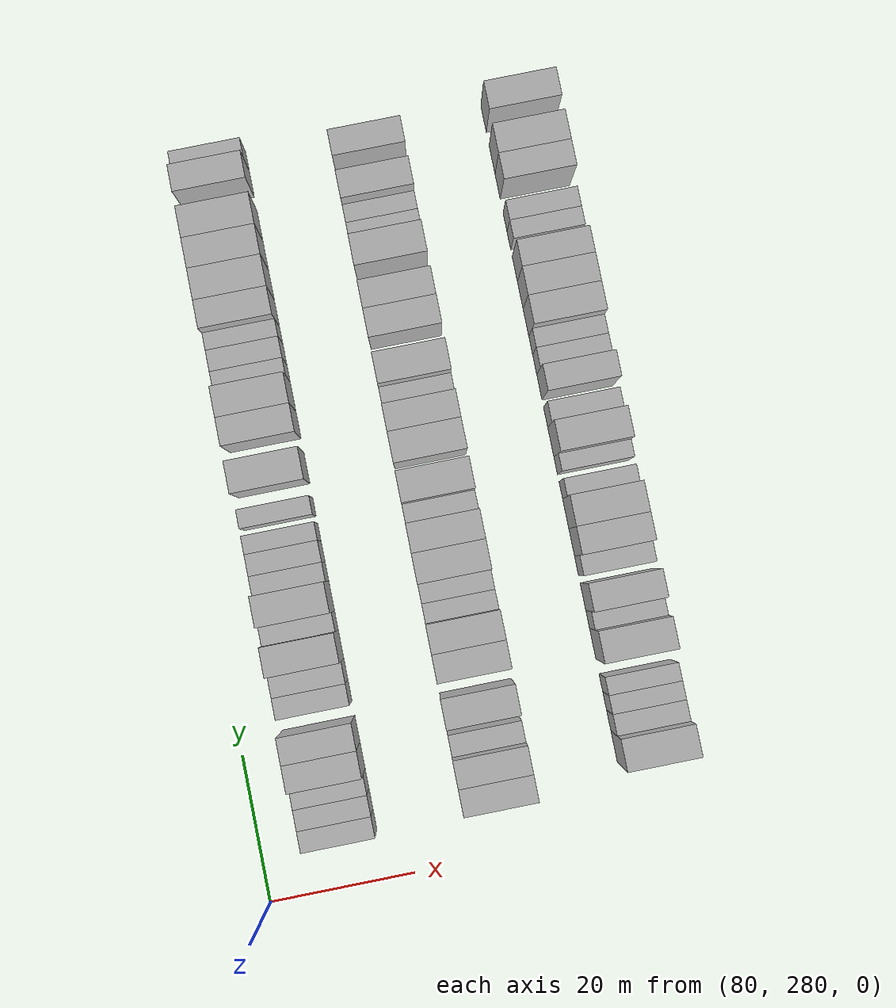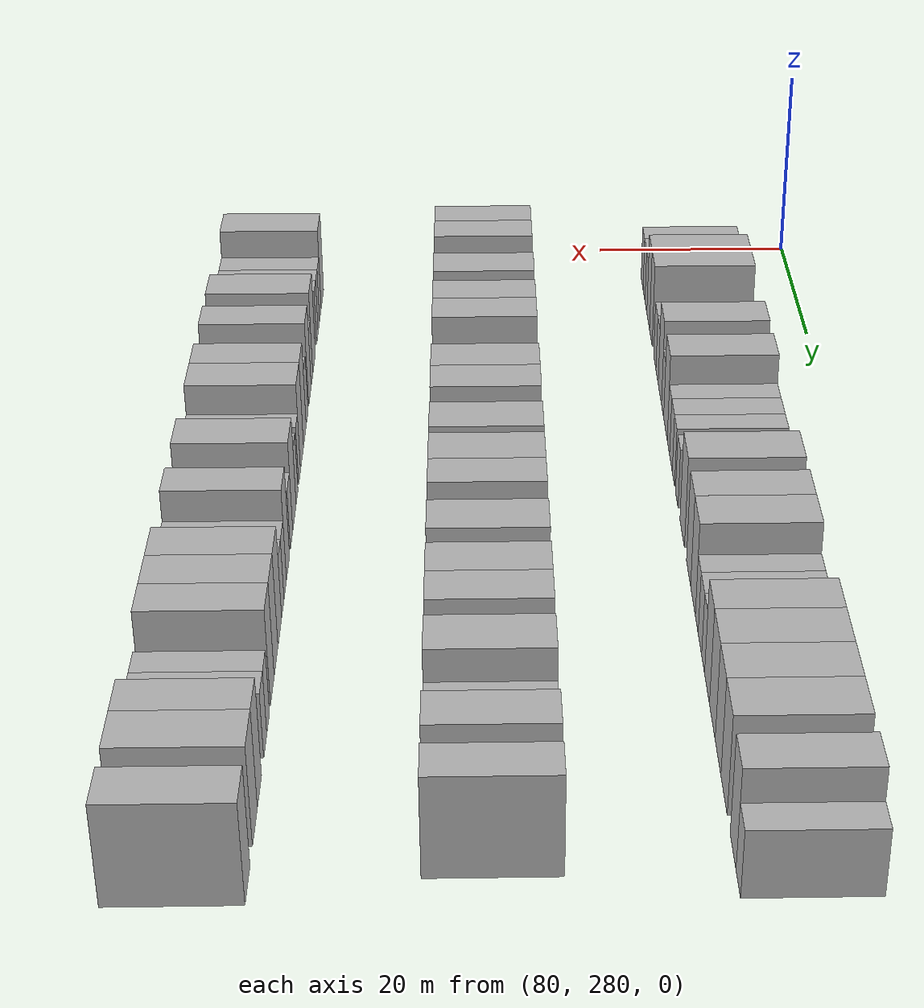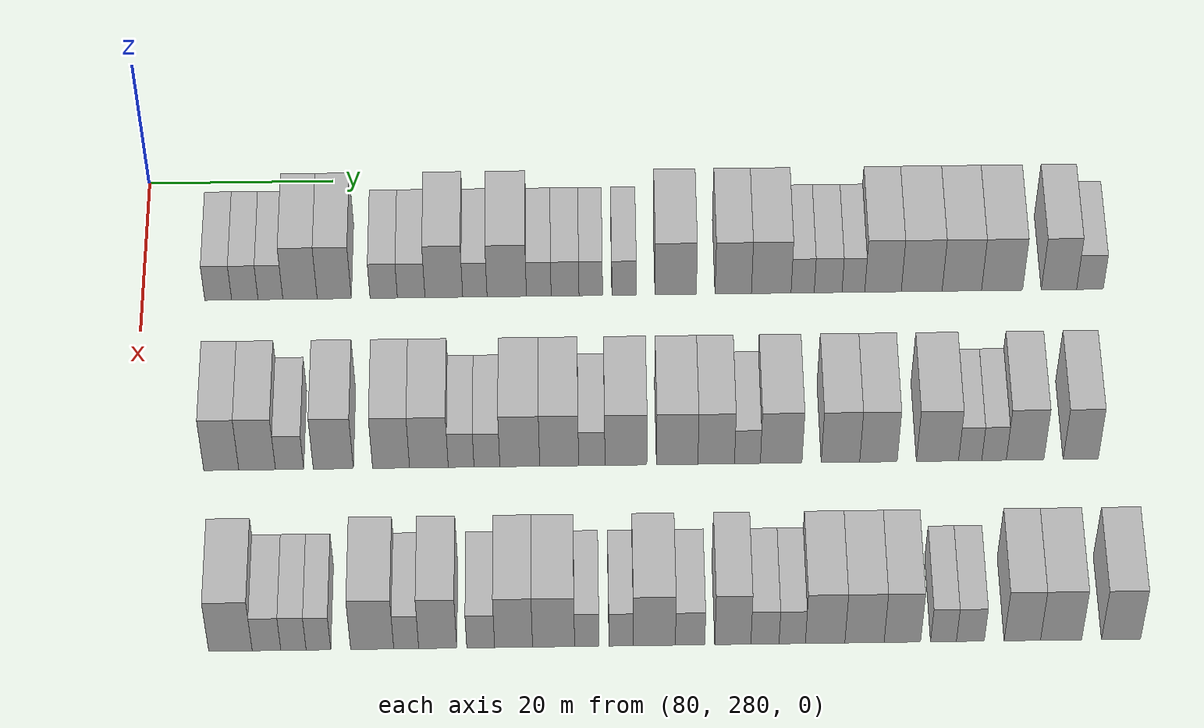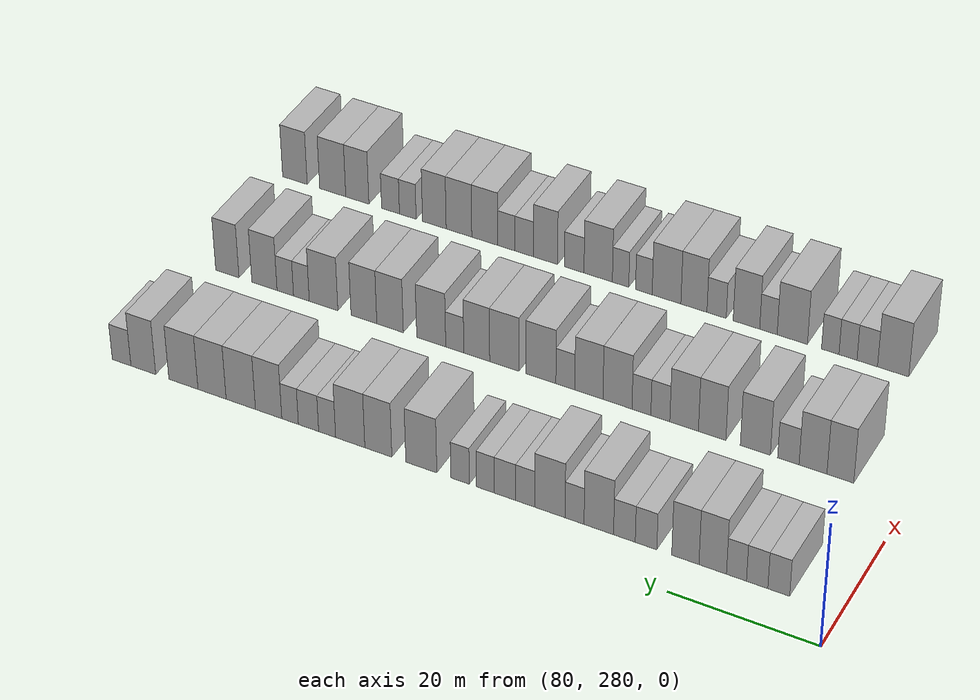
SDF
<sdf version="1.6">
 <world name="default">
  <model name="building_722">
   <static>1</static>
   <pose>91.0000 288.1265 0 0.000000 0.000000 0.000000</pose>
   <link name="link">
    <pose>0 0 3.00 0 0 0</pose>
    <collision name="collision"><geometry><box><size>10.0000 2.8648 6.0000</size></box></geometry></collision>
    <visual name="visual">
     <cast_shadows>0</cast_shadows>
     <geometry><box><size>10.0000 2.8648 6.0000</size></box></geometry>
     <material>
      <script>
       <uri>model://HANNAS_wall/materials/scripts</uri>
       <uri>model://HANNAS_wall/materials/textures</uri>
       <name>vrc/HANNAS_wall</name>
      </script>
     </material>
    </visual>
   </link>
  </model>
  <model name="building_723">
   <static>1</static>
   <pose>91.0000 290.9679 0 0.000000 0.000000 0.000000</pose>
   <link name="link">
    <pose>0 0 3.00 0 0 0</pose>
    <collision name="collision"><geometry><box><size>10.0000 2.8181 6.0000</size></box></geometry></collision>
    <visual name="visual">
     <cast_shadows>0</cast_shadows>
     <geometry><box><size>10.0000 2.8181 6.0000</size></box></geometry>
     <material>
      <script>
       <uri>model://HANNAS_wall/materials/scripts</uri>
       <uri>model://HANNAS_wall/materials/textures</uri>
       <name>vrc/HANNAS_wall</name>
      </script>
     </material>
    </visual>
   </link>
  </model>
  <model name="building_724">
   <static>1</static>
   <pose>91.0000 293.7008 0 0.000000 0.000000 0.000000</pose>
   <link name="link">
    <pose>0 0 3.00 0 0 0</pose>
    <collision name="collision"><geometry><box><size>10.0000 2.6477 6.0000</size></box></geometry></collision>
    <visual name="visual">
     <cast_shadows>0</cast_shadows>
     <geometry><box><size>10.0000 2.6477 6.0000</size></box></geometry>
     <material>
      <script>
       <uri>model://HANNAS_wall/materials/scripts</uri>
       <uri>model://HANNAS_wall/materials/textures</uri>
       <name>vrc/HANNAS_wall</name>
      </script>
     </material>
    </visual>
   </link>
  </model>
  <model name="building_725">
   <static>1</static>
   <pose>91.0000 296.8604 0 0.000000 0.000000 0.000000</pose>
   <link name="link">
    <pose>0 0 4.50 0 0 0</pose>
    <collision name="collision"><geometry><box><size>10.0000 3.6715 9.0000</size></box></geometry></collision>
    <visual name="visual">
     <cast_shadows>0</cast_shadows>
     <geometry><box><size>10.0000 3.6715 9.0000</size></box></geometry>
     <material>
      <script>
       <uri>model://HANNAS_wall/materials/scripts</uri>
       <uri>model://HANNAS_wall/materials/textures</uri>
       <name>vrc/HANNAS_wall</name>
      </script>
     </material>
    </visual>
   </link>
  </model>
  <model name="building_726">
   <static>1</static>
   <pose>91.0000 300.5198 0 0.000000 0.000000 0.000000</pose>
   <link name="link">
    <pose>0 0 4.50 0 0 0</pose>
    <collision name="collision"><geometry><box><size>10.0000 3.6472 9.0000</size></box></geometry></collision>
    <visual name="visual">
     <cast_shadows>0</cast_shadows>
     <geometry><box><size>10.0000 3.6472 9.0000</size></box></geometry>
     <material>
      <script>
       <uri>model://HANNAS_wall/materials/scripts</uri>
       <uri>model://HANNAS_wall/materials/textures</uri>
       <name>vrc/HANNAS_wall</name>
      </script>
     </material>
    </visual>
   </link>
  </model>
  <model name="building_727">
   <static>1</static>
   <pose>91.0000 305.8039 0 0.000000 0.000000 0.000000</pose>
   <link name="link">
    <pose>0 0 3.00 0 0 0</pose>
    <collision name="collision"><geometry><box><size>10.0000 2.9212 6.0000</size></box></geometry></collision>
    <visual name="visual">
     <cast_shadows>0</cast_shadows>
     <geometry><box><size>10.0000 2.9212 6.0000</size></box></geometry>
     <material>
      <script>
       <uri>model://HANNAS_wall/materials/scripts</uri>
       <uri>model://HANNAS_wall/materials/textures</uri>
       <name>vrc/HANNAS_wall</name>
      </script>
     </material>
    </visual>
   </link>
  </model>
  <model name="building_728">
   <static>1</static>
   <pose>91.0000 308.7383 0 0.000000 0.000000 0.000000</pose>
   <link name="link">
    <pose>0 0 3.00 0 0 0</pose>
    <collision name="collision"><geometry><box><size>10.0000 2.9477 6.0000</size></box></geometry></collision>
    <visual name="visual">
     <cast_shadows>0</cast_shadows>
     <geometry><box><size>10.0000 2.9477 6.0000</size></box></geometry>
     <material>
      <script>
       <uri>model://HANNAS_wall/materials/scripts</uri>
       <uri>model://HANNAS_wall/materials/textures</uri>
       <name>vrc/HANNAS_wall</name>
      </script>
     </material>
    </visual>
   </link>
  </model>
  <model name="building_729">
   <static>1</static>
   <pose>91.0000 312.2304 0 0.000000 0.000000 0.000000</pose>
   <link name="link">
    <pose>0 0 4.50 0 0 0</pose>
    <collision name="collision"><geometry><box><size>10.0000 4.0364 9.0000</size></box></geometry></collision>
    <visual name="visual">
     <cast_shadows>0</cast_shadows>
     <geometry><box><size>10.0000 4.0364 9.0000</size></box></geometry>
     <material>
      <script>
       <uri>model://HANNAS_wall/materials/scripts</uri>
       <uri>model://HANNAS_wall/materials/textures</uri>
       <name>vrc/HANNAS_wall</name>
      </script>
     </material>
    </visual>
   </link>
  </model>
  <model name="building_730">
   <static>1</static>
   <pose>91.0000 315.5493 0 0.000000 0.000000 0.000000</pose>
   <link name="link">
    <pose>0 0 3.00 0 0 0</pose>
    <collision name="collision"><geometry><box><size>10.0000 2.6014 6.0000</size></box></geometry></collision>
    <visual name="visual">
     <cast_shadows>0</cast_shadows>
     <geometry><box><size>10.0000 2.6014 6.0000</size></box></geometry>
     <material>
      <script>
       <uri>model://HANNAS_wall/materials/scripts</uri>
       <uri>model://HANNAS_wall/materials/textures</uri>
       <name>vrc/HANNAS_wall</name>
      </script>
     </material>
    </visual>
   </link>
  </model>
  <model name="building_731">
   <static>1</static>
   <pose>91.0000 318.9566 0 0.000000 0.000000 0.000000</pose>
   <link name="link">
    <pose>0 0 4.50 0 0 0</pose>
    <collision name="collision"><geometry><box><size>10.0000 4.2130 9.0000</size></box></geometry></collision>
    <visual name="visual">
     <cast_shadows>0</cast_shadows>
     <geometry><box><size>10.0000 4.2130 9.0000</size></box></geometry>
     <material>
      <script>
       <uri>model://HANNAS_wall/materials/scripts</uri>
       <uri>model://HANNAS_wall/materials/textures</uri>
       <name>vrc/HANNAS_wall</name>
      </script>
     </material>
    </visual>
   </link>
  </model>
  <model name="building_732">
   <static>1</static>
   <pose>91.0000 322.3830 0 0.000000 0.000000 0.000000</pose>
   <link name="link">
    <pose>0 0 3.00 0 0 0</pose>
    <collision name="collision"><geometry><box><size>10.0000 2.6398 6.0000</size></box></geometry></collision>
    <visual name="visual">
     <cast_shadows>0</cast_shadows>
     <geometry><box><size>10.0000 2.6398 6.0000</size></box></geometry>
     <material>
      <script>
       <uri>model://HANNAS_wall/materials/scripts</uri>
       <uri>model://HANNAS_wall/materials/textures</uri>
       <name>vrc/HANNAS_wall</name>
      </script>
     </material>
    </visual>
   </link>
  </model>
  <model name="building_733">
   <static>1</static>
   <pose>91.0000 325.1922 0 0.000000 0.000000 0.000000</pose>
   <link name="link">
    <pose>0 0 3.00 0 0 0</pose>
    <collision name="collision"><geometry><box><size>10.0000 2.9786 6.0000</size></box></geometry></collision>
    <visual name="visual">
     <cast_shadows>0</cast_shadows>
     <geometry><box><size>10.0000 2.9786 6.0000</size></box></geometry>
     <material>
      <script>
       <uri>model://HANNAS_wall/materials/scripts</uri>
       <uri>model://HANNAS_wall/materials/textures</uri>
       <name>vrc/HANNAS_wall</name>
      </script>
     </material>
    </visual>
   </link>
  </model>
  <model name="building_734">
   <static>1</static>
   <pose>91.0000 327.9392 0 0.000000 0.000000 0.000000</pose>
   <link name="link">
    <pose>0 0 3.00 0 0 0</pose>
    <collision name="collision"><geometry><box><size>10.0000 2.5154 6.0000</size></box></geometry></collision>
    <visual name="visual">
     <cast_shadows>0</cast_shadows>
     <geometry><box><size>10.0000 2.5154 6.0000</size></box></geometry>
     <material>
      <script>
       <uri>model://HANNAS_wall/materials/scripts</uri>
       <uri>model://HANNAS_wall/materials/textures</uri>
       <name>vrc/HANNAS_wall</name>
      </script>
     </material>
    </visual>
   </link>
  </model>
  <model name="building_735">
   <static>1</static>
   <pose>91.0000 331.5018 0 0.000000 0.000000 0.000000</pose>
   <link name="link">
    <pose>0 0 3.00 0 0 0</pose>
    <collision name="collision"><geometry><box><size>10.0000 2.6098 6.0000</size></box></geometry></collision>
    <visual name="visual">
     <cast_shadows>0</cast_shadows>
     <geometry><box><size>10.0000 2.6098 6.0000</size></box></geometry>
     <material>
      <script>
       <uri>model://HANNAS_wall/materials/scripts</uri>
       <uri>model://HANNAS_wall/materials/textures</uri>
       <name>vrc/HANNAS_wall</name>
      </script>
     </material>
    </visual>
   </link>
  </model>
  <model name="building_736">
   <static>1</static>
   <pose>91.0000 337.0210 0 0.000000 0.000000 0.000000</pose>
   <link name="link">
    <pose>0 0 4.50 0 0 0</pose>
    <collision name="collision"><geometry><box><size>10.0000 4.4286 9.0000</size></box></geometry></collision>
    <visual name="visual">
     <cast_shadows>0</cast_shadows>
     <geometry><box><size>10.0000 4.4286 9.0000</size></box></geometry>
     <material>
      <script>
       <uri>model://HANNAS_wall/materials/scripts</uri>
       <uri>model://HANNAS_wall/materials/textures</uri>
       <name>vrc/HANNAS_wall</name>
      </script>
     </material>
    </visual>
   </link>
  </model>
  <model name="building_737">
   <static>1</static>
   <pose>91.0000 343.1822 0 0.000000 0.000000 0.000000</pose>
   <link name="link">
    <pose>0 0 4.50 0 0 0</pose>
    <collision name="collision"><geometry><box><size>10.0000 3.8938 9.0000</size></box></geometry></collision>
    <visual name="visual">
     <cast_shadows>0</cast_shadows>
     <geometry><box><size>10.0000 3.8938 9.0000</size></box></geometry>
     <material>
      <script>
       <uri>model://HANNAS_wall/materials/scripts</uri>
       <uri>model://HANNAS_wall/materials/textures</uri>
       <name>vrc/HANNAS_wall</name>
      </script>
     </material>
    </visual>
   </link>
  </model>
  <model name="building_738">
   <static>1</static>
   <pose>91.0000 347.2525 0 0.000000 0.000000 0.000000</pose>
   <link name="link">
    <pose>0 0 4.50 0 0 0</pose>
    <collision name="collision"><geometry><box><size>10.0000 4.2467 9.0000</size></box></geometry></collision>
    <visual name="visual">
     <cast_shadows>0</cast_shadows>
     <geometry><box><size>10.0000 4.2467 9.0000</size></box></geometry>
     <material>
      <script>
       <uri>model://HANNAS_wall/materials/scripts</uri>
       <uri>model://HANNAS_wall/materials/textures</uri>
       <name>vrc/HANNAS_wall</name>
      </script>
     </material>
    </visual>
   </link>
  </model>
  <model name="building_739">
   <static>1</static>
   <pose>91.0000 350.6167 0 0.000000 0.000000 0.000000</pose>
   <link name="link">
    <pose>0 0 3.00 0 0 0</pose>
    <collision name="collision"><geometry><box><size>10.0000 2.4818 6.0000</size></box></geometry></collision>
    <visual name="visual">
     <cast_shadows>0</cast_shadows>
     <geometry><box><size>10.0000 2.4818 6.0000</size></box></geometry>
     <material>
      <script>
       <uri>model://HANNAS_wall/materials/scripts</uri>
       <uri>model://HANNAS_wall/materials/textures</uri>
       <name>vrc/HANNAS_wall</name>
      </script>
     </material>
    </visual>
   </link>
  </model>
  <model name="building_740">
   <static>1</static>
   <pose>91.0000 353.3417 0 0.000000 0.000000 0.000000</pose>
   <link name="link">
    <pose>0 0 3.00 0 0 0</pose>
    <collision name="collision"><geometry><box><size>10.0000 2.9683 6.0000</size></box></geometry></collision>
    <visual name="visual">
     <cast_shadows>0</cast_shadows>
     <geometry><box><size>10.0000 2.9683 6.0000</size></box></geometry>
     <material>
      <script>
       <uri>model://HANNAS_wall/materials/scripts</uri>
       <uri>model://HANNAS_wall/materials/textures</uri>
       <name>vrc/HANNAS_wall</name>
      </script>
     </material>
    </visual>
   </link>
  </model>
  <model name="building_741">
   <static>1</static>
   <pose>91.0000 356.0462 0 0.000000 0.000000 0.000000</pose>
   <link name="link">
    <pose>0 0 3.00 0 0 0</pose>
    <collision name="collision"><geometry><box><size>10.0000 2.4407 6.0000</size></box></geometry></collision>
    <visual name="visual">
     <cast_shadows>0</cast_shadows>
     <geometry><box><size>10.0000 2.4407 6.0000</size></box></geometry>
     <material>
      <script>
       <uri>model://HANNAS_wall/materials/scripts</uri>
       <uri>model://HANNAS_wall/materials/textures</uri>
       <name>vrc/HANNAS_wall</name>
      </script>
     </material>
    </visual>
   </link>
  </model>
  <model name="building_742">
   <static>1</static>
   <pose>91.0000 359.2211 0 0.000000 0.000000 0.000000</pose>
   <link name="link">
    <pose>0 0 4.50 0 0 0</pose>
    <collision name="collision"><geometry><box><size>10.0000 3.9092 9.0000</size></box></geometry></collision>
    <visual name="visual">
     <cast_shadows>0</cast_shadows>
     <geometry><box><size>10.0000 3.9092 9.0000</size></box></geometry>
     <material>
      <script>
       <uri>model://HANNAS_wall/materials/scripts</uri>
       <uri>model://HANNAS_wall/materials/textures</uri>
       <name>vrc/HANNAS_wall</name>
      </script>
     </material>
    </visual>
   </link>
  </model>
  <model name="building_743">
   <static>1</static>
   <pose>91.0000 363.3642 0 0.000000 0.000000 0.000000</pose>
   <link name="link">
    <pose>0 0 4.50 0 0 0</pose>
    <collision name="collision"><geometry><box><size>10.0000 4.3770 9.0000</size></box></geometry></collision>
    <visual name="visual">
     <cast_shadows>0</cast_shadows>
     <geometry><box><size>10.0000 4.3770 9.0000</size></box></geometry>
     <material>
      <script>
       <uri>model://HANNAS_wall/materials/scripts</uri>
       <uri>model://HANNAS_wall/materials/textures</uri>
       <name>vrc/HANNAS_wall</name>
      </script>
     </material>
    </visual>
   </link>
  </model>
  <model name="building_744">
   <static>1</static>
   <pose>91.0000 367.6652 0 0.000000 0.000000 0.000000</pose>
   <link name="link">
    <pose>0 0 4.50 0 0 0</pose>
    <collision name="collision"><geometry><box><size>10.0000 4.2252 9.0000</size></box></geometry></collision>
    <visual name="visual">
     <cast_shadows>0</cast_shadows>
     <geometry><box><size>10.0000 4.2252 9.0000</size></box></geometry>
     <material>
      <script>
       <uri>model://HANNAS_wall/materials/scripts</uri>
       <uri>model://HANNAS_wall/materials/textures</uri>
       <name>vrc/HANNAS_wall</name>
      </script>
     </material>
    </visual>
   </link>
  </model>
  <model name="building_745">
   <static>1</static>
   <pose>91.0000 371.9808 0 0.000000 0.000000 0.000000</pose>
   <link name="link">
    <pose>0 0 4.50 0 0 0</pose>
    <collision name="collision"><geometry><box><size>10.0000 4.4059 9.0000</size></box></geometry></collision>
    <visual name="visual">
     <cast_shadows>0</cast_shadows>
     <geometry><box><size>10.0000 4.4059 9.0000</size></box></geometry>
     <material>
      <script>
       <uri>model://HANNAS_wall/materials/scripts</uri>
       <uri>model://HANNAS_wall/materials/textures</uri>
       <name>vrc/HANNAS_wall</name>
      </script>
     </material>
    </visual>
   </link>
  </model>
  <model name="building_746">
   <static>1</static>
   <pose>91.0000 378.0771 0 0.000000 0.000000 0.000000</pose>
   <link name="link">
    <pose>0 0 4.50 0 0 0</pose>
    <collision name="collision"><geometry><box><size>10.0000 3.7868 9.0000</size></box></geometry></collision>
    <visual name="visual">
     <cast_shadows>0</cast_shadows>
     <geometry><box><size>10.0000 3.7868 9.0000</size></box></geometry>
     <material>
      <script>
       <uri>model://HANNAS_wall/materials/scripts</uri>
       <uri>model://HANNAS_wall/materials/textures</uri>
       <name>vrc/HANNAS_wall</name>
      </script>
     </material>
    </visual>
   </link>
  </model>
  <model name="building_747">
   <static>1</static>
   <pose>91.0000 381.3999 0 0.000000 0.000000 0.000000</pose>
   <link name="link">
    <pose>0 0 3.00 0 0 0</pose>
    <collision name="collision"><geometry><box><size>10.0000 2.8589 6.0000</size></box></geometry></collision>
    <visual name="visual">
     <cast_shadows>0</cast_shadows>
     <geometry><box><size>10.0000 2.8589 6.0000</size></box></geometry>
     <material>
      <script>
       <uri>model://HANNAS_wall/materials/scripts</uri>
       <uri>model://HANNAS_wall/materials/textures</uri>
       <name>vrc/HANNAS_wall</name>
      </script>
     </material>
    </visual>
   </link>
  </model>
  <model name="building_920">
   <static>1</static>
   <pose>113.0000 289.3886 0 0.000000 0.000000 0.000000</pose>
   <link name="link">
    <pose>0 0 4.50 0 0 0</pose>
    <collision name="collision"><geometry><box><size>10.0000 3.6331 9.0000</size></box></geometry></collision>
    <visual name="visual">
     <cast_shadows>0</cast_shadows>
     <geometry><box><size>10.0000 3.6331 9.0000</size></box></geometry>
     <material>
      <script>
       <uri>model://HANNAS_wall/materials/scripts</uri>
       <uri>model://HANNAS_wall/materials/textures</uri>
       <name>vrc/HANNAS_wall</name>
      </script>
     </material>
    </visual>
   </link>
  </model>
  <model name="building_921">
   <static>1</static>
   <pose>113.0000 293.1034 0 0.000000 0.000000 0.000000</pose>
   <link name="link">
    <pose>0 0 4.50 0 0 0</pose>
    <collision name="collision"><geometry><box><size>10.0000 3.7965 9.0000</size></box></geometry></collision>
    <visual name="visual">
     <cast_shadows>0</cast_shadows>
     <geometry><box><size>10.0000 3.7965 9.0000</size></box></geometry>
     <material>
      <script>
       <uri>model://HANNAS_wall/materials/scripts</uri>
       <uri>model://HANNAS_wall/materials/textures</uri>
       <name>vrc/HANNAS_wall</name>
      </script>
     </material>
    </visual>
   </link>
  </model>
  <model name="building_922">
   <static>1</static>
   <pose>113.0000 296.4651 0 0.000000 0.000000 0.000000</pose>
   <link name="link">
    <pose>0 0 3.00 0 0 0</pose>
    <collision name="collision"><geometry><box><size>10.0000 2.9270 6.0000</size></box></geometry></collision>
    <visual name="visual">
     <cast_shadows>0</cast_shadows>
     <geometry><box><size>10.0000 2.9270 6.0000</size></box></geometry>
     <material>
      <script>
       <uri>model://HANNAS_wall/materials/scripts</uri>
       <uri>model://HANNAS_wall/materials/textures</uri>
       <name>vrc/HANNAS_wall</name>
      </script>
     </material>
    </visual>
   </link>
  </model>
  <model name="building_923">
   <static>1</static>
   <pose>113.0000 301.0033 0 0.000000 0.000000 0.000000</pose>
   <link name="link">
    <pose>0 0 4.50 0 0 0</pose>
    <collision name="collision"><geometry><box><size>10.0000 4.1494 9.0000</size></box></geometry></collision>
    <visual name="visual">
     <cast_shadows>0</cast_shadows>
     <geometry><box><size>10.0000 4.1494 9.0000</size></box></geometry>
     <material>
      <script>
       <uri>model://HANNAS_wall/materials/scripts</uri>
       <uri>model://HANNAS_wall/materials/textures</uri>
       <name>vrc/HANNAS_wall</name>
      </script>
     </material>
    </visual>
   </link>
  </model>
  <model name="building_924">
   <static>1</static>
   <pose>113.0000 306.9953 0 0.000000 0.000000 0.000000</pose>
   <link name="link">
    <pose>0 0 4.50 0 0 0</pose>
    <collision name="collision"><geometry><box><size>10.0000 3.8348 9.0000</size></box></geometry></collision>
    <visual name="visual">
     <cast_shadows>0</cast_shadows>
     <geometry><box><size>10.0000 3.8348 9.0000</size></box></geometry>
     <material>
      <script>
       <uri>model://HANNAS_wall/materials/scripts</uri>
       <uri>model://HANNAS_wall/materials/textures</uri>
       <name>vrc/HANNAS_wall</name>
      </script>
     </material>
    </visual>
   </link>
  </model>
  <model name="building_925">
   <static>1</static>
   <pose>113.0000 310.9162 0 0.000000 0.000000 0.000000</pose>
   <link name="link">
    <pose>0 0 4.50 0 0 0</pose>
    <collision name="collision"><geometry><box><size>10.0000 4.0070 9.0000</size></box></geometry></collision>
    <visual name="visual">
     <cast_shadows>0</cast_shadows>
     <geometry><box><size>10.0000 4.0070 9.0000</size></box></geometry>
     <material>
      <script>
       <uri>model://HANNAS_wall/materials/scripts</uri>
       <uri>model://HANNAS_wall/materials/textures</uri>
       <name>vrc/HANNAS_wall</name>
      </script>
     </material>
    </visual>
   </link>
  </model>
  <model name="building_926">
   <static>1</static>
   <pose>113.0000 314.2571 0 0.000000 0.000000 0.000000</pose>
   <link name="link">
    <pose>0 0 3.00 0 0 0</pose>
    <collision name="collision"><geometry><box><size>10.0000 2.6749 6.0000</size></box></geometry></collision>
    <visual name="visual">
     <cast_shadows>0</cast_shadows>
     <geometry><box><size>10.0000 2.6749 6.0000</size></box></geometry>
     <material>
      <script>
       <uri>model://HANNAS_wall/materials/scripts</uri>
       <uri>model://HANNAS_wall/materials/textures</uri>
       <name>vrc/HANNAS_wall</name>
      </script>
     </material>
    </visual>
   </link>
  </model>
  <model name="building_927">
   <static>1</static>
   <pose>113.0000 316.9338 0 0.000000 0.000000 0.000000</pose>
   <link name="link">
    <pose>0 0 3.00 0 0 0</pose>
    <collision name="collision"><geometry><box><size>10.0000 2.6786 6.0000</size></box></geometry></collision>
    <visual name="visual">
     <cast_shadows>0</cast_shadows>
     <geometry><box><size>10.0000 2.6786 6.0000</size></box></geometry>
     <material>
      <script>
       <uri>model://HANNAS_wall/materials/scripts</uri>
       <uri>model://HANNAS_wall/materials/textures</uri>
       <name>vrc/HANNAS_wall</name>
      </script>
     </material>
    </visual>
   </link>
  </model>
  <model name="building_928">
   <static>1</static>
   <pose>113.0000 320.3414 0 0.000000 0.000000 0.000000</pose>
   <link name="link">
    <pose>0 0 4.50 0 0 0</pose>
    <collision name="collision"><geometry><box><size>10.0000 4.1367 9.0000</size></box></geometry></collision>
    <visual name="visual">
     <cast_shadows>0</cast_shadows>
     <geometry><box><size>10.0000 4.1367 9.0000</size></box></geometry>
     <material>
      <script>
       <uri>model://HANNAS_wall/materials/scripts</uri>
       <uri>model://HANNAS_wall/materials/textures</uri>
       <name>vrc/HANNAS_wall</name>
      </script>
     </material>
    </visual>
   </link>
  </model>
  <model name="building_929">
   <static>1</static>
   <pose>113.0000 324.4294 0 0.000000 0.000000 0.000000</pose>
   <link name="link">
    <pose>0 0 4.50 0 0 0</pose>
    <collision name="collision"><geometry><box><size>10.0000 4.0392 9.0000</size></box></geometry></collision>
    <visual name="visual">
     <cast_shadows>0</cast_shadows>
     <geometry><box><size>10.0000 4.0392 9.0000</size></box></geometry>
     <material>
      <script>
       <uri>model://HANNAS_wall/materials/scripts</uri>
       <uri>model://HANNAS_wall/materials/textures</uri>
       <name>vrc/HANNAS_wall</name>
      </script>
     </material>
    </visual>
   </link>
  </model>
  <model name="building_930">
   <static>1</static>
   <pose>113.0000 327.8124 0 0.000000 0.000000 0.000000</pose>
   <link name="link">
    <pose>0 0 3.00 0 0 0</pose>
    <collision name="collision"><geometry><box><size>10.0000 2.7269 6.0000</size></box></geometry></collision>
    <visual name="visual">
     <cast_shadows>0</cast_shadows>
     <geometry><box><size>10.0000 2.7269 6.0000</size></box></geometry>
     <material>
      <script>
       <uri>model://HANNAS_wall/materials/scripts</uri>
       <uri>model://HANNAS_wall/materials/textures</uri>
       <name>vrc/HANNAS_wall</name>
      </script>
     </material>
    </visual>
   </link>
  </model>
  <model name="building_931">
   <static>1</static>
   <pose>113.0000 331.3527 0 0.000000 0.000000 0.000000</pose>
   <link name="link">
    <pose>0 0 4.50 0 0 0</pose>
    <collision name="collision"><geometry><box><size>10.0000 4.3536 9.0000</size></box></geometry></collision>
    <visual name="visual">
     <cast_shadows>0</cast_shadows>
     <geometry><box><size>10.0000 4.3536 9.0000</size></box></geometry>
     <material>
      <script>
       <uri>model://HANNAS_wall/materials/scripts</uri>
       <uri>model://HANNAS_wall/materials/textures</uri>
       <name>vrc/HANNAS_wall</name>
      </script>
     </material>
    </visual>
   </link>
  </model>
  <model name="building_932">
   <static>1</static>
   <pose>113.0000 336.6772 0 0.000000 0.000000 0.000000</pose>
   <link name="link">
    <pose>0 0 4.50 0 0 0</pose>
    <collision name="collision"><geometry><box><size>10.0000 4.2953 9.0000</size></box></geometry></collision>
    <visual name="visual">
     <cast_shadows>0</cast_shadows>
     <geometry><box><size>10.0000 4.2953 9.0000</size></box></geometry>
     <material>
      <script>
       <uri>model://HANNAS_wall/materials/scripts</uri>
       <uri>model://HANNAS_wall/materials/textures</uri>
       <name>vrc/HANNAS_wall</name>
      </script>
     </material>
    </visual>
   </link>
  </model>
  <model name="building_933">
   <static>1</static>
   <pose>113.0000 340.7262 0 0.000000 0.000000 0.000000</pose>
   <link name="link">
    <pose>0 0 4.50 0 0 0</pose>
    <collision name="collision"><geometry><box><size>10.0000 3.8026 9.0000</size></box></geometry></collision>
    <visual name="visual">
     <cast_shadows>0</cast_shadows>
     <geometry><box><size>10.0000 3.8026 9.0000</size></box></geometry>
     <material>
      <script>
       <uri>model://HANNAS_wall/materials/scripts</uri>
       <uri>model://HANNAS_wall/materials/textures</uri>
       <name>vrc/HANNAS_wall</name>
      </script>
     </material>
    </visual>
   </link>
  </model>
  <model name="building_934">
   <static>1</static>
   <pose>113.0000 343.9714 0 0.000000 0.000000 0.000000</pose>
   <link name="link">
    <pose>0 0 3.00 0 0 0</pose>
    <collision name="collision"><geometry><box><size>10.0000 2.6879 6.0000</size></box></geometry></collision>
    <visual name="visual">
     <cast_shadows>0</cast_shadows>
     <geometry><box><size>10.0000 2.6879 6.0000</size></box></geometry>
     <material>
      <script>
       <uri>model://HANNAS_wall/materials/scripts</uri>
       <uri>model://HANNAS_wall/materials/textures</uri>
       <name>vrc/HANNAS_wall</name>
      </script>
     </material>
    </visual>
   </link>
  </model>
  <model name="building_935">
   <static>1</static>
   <pose>113.0000 347.4784 0 0.000000 0.000000 0.000000</pose>
   <link name="link">
    <pose>0 0 4.50 0 0 0</pose>
    <collision name="collision"><geometry><box><size>10.0000 4.3262 9.0000</size></box></geometry></collision>
    <visual name="visual">
     <cast_shadows>0</cast_shadows>
     <geometry><box><size>10.0000 4.3262 9.0000</size></box></geometry>
     <material>
      <script>
       <uri>model://HANNAS_wall/materials/scripts</uri>
       <uri>model://HANNAS_wall/materials/textures</uri>
       <name>vrc/HANNAS_wall</name>
      </script>
     </material>
    </visual>
   </link>
  </model>
  <model name="building_936">
   <static>1</static>
   <pose>113.0000 353.6400 0 0.000000 0.000000 0.000000</pose>
   <link name="link">
    <pose>0 0 4.50 0 0 0</pose>
    <collision name="collision"><geometry><box><size>10.0000 3.9969 9.0000</size></box></geometry></collision>
    <visual name="visual">
     <cast_shadows>0</cast_shadows>
     <geometry><box><size>10.0000 3.9969 9.0000</size></box></geometry>
     <material>
      <script>
       <uri>model://HANNAS_wall/materials/scripts</uri>
       <uri>model://HANNAS_wall/materials/textures</uri>
       <name>vrc/HANNAS_wall</name>
      </script>
     </material>
    </visual>
   </link>
  </model>
  <model name="building_937">
   <static>1</static>
   <pose>113.0000 357.5888 0 0.000000 0.000000 0.000000</pose>
   <link name="link">
    <pose>0 0 4.50 0 0 0</pose>
    <collision name="collision"><geometry><box><size>10.0000 3.9007 9.0000</size></box></geometry></collision>
    <visual name="visual">
     <cast_shadows>0</cast_shadows>
     <geometry><box><size>10.0000 3.9007 9.0000</size></box></geometry>
     <material>
      <script>
       <uri>model://HANNAS_wall/materials/scripts</uri>
       <uri>model://HANNAS_wall/materials/textures</uri>
       <name>vrc/HANNAS_wall</name>
      </script>
     </material>
    </visual>
   </link>
  </model>
  <model name="building_938">
   <static>1</static>
   <pose>113.0000 363.7300 0 0.000000 0.000000 0.000000</pose>
   <link name="link">
    <pose>0 0 4.50 0 0 0</pose>
    <collision name="collision"><geometry><box><size>10.0000 4.3816 9.0000</size></box></geometry></collision>
    <visual name="visual">
     <cast_shadows>0</cast_shadows>
     <geometry><box><size>10.0000 4.3816 9.0000</size></box></geometry>
     <material>
      <script>
       <uri>model://HANNAS_wall/materials/scripts</uri>
       <uri>model://HANNAS_wall/materials/textures</uri>
       <name>vrc/HANNAS_wall</name>
      </script>
     </material>
    </visual>
   </link>
  </model>
  <model name="building_939">
   <static>1</static>
   <pose>113.0000 367.1287 0 0.000000 0.000000 0.000000</pose>
   <link name="link">
    <pose>0 0 3.00 0 0 0</pose>
    <collision name="collision"><geometry><box><size>10.0000 2.4159 6.0000</size></box></geometry></collision>
    <visual name="visual">
     <cast_shadows>0</cast_shadows>
     <geometry><box><size>10.0000 2.4159 6.0000</size></box></geometry>
     <material>
      <script>
       <uri>model://HANNAS_wall/materials/scripts</uri>
       <uri>model://HANNAS_wall/materials/textures</uri>
       <name>vrc/HANNAS_wall</name>
      </script>
     </material>
    </visual>
   </link>
  </model>
  <model name="building_940">
   <static>1</static>
   <pose>113.0000 369.6104 0 0.000000 0.000000 0.000000</pose>
   <link name="link">
    <pose>0 0 3.00 0 0 0</pose>
    <collision name="collision"><geometry><box><size>10.0000 2.5474 6.0000</size></box></geometry></collision>
    <visual name="visual">
     <cast_shadows>0</cast_shadows>
     <geometry><box><size>10.0000 2.5474 6.0000</size></box></geometry>
     <material>
      <script>
       <uri>model://HANNAS_wall/materials/scripts</uri>
       <uri>model://HANNAS_wall/materials/textures</uri>
       <name>vrc/HANNAS_wall</name>
      </script>
     </material>
    </visual>
   </link>
  </model>
  <model name="building_941">
   <static>1</static>
   <pose>113.0000 372.8395 0 0.000000 0.000000 0.000000</pose>
   <link name="link">
    <pose>0 0 4.50 0 0 0</pose>
    <collision name="collision"><geometry><box><size>10.0000 3.9108 9.0000</size></box></geometry></collision>
    <visual name="visual">
     <cast_shadows>0</cast_shadows>
     <geometry><box><size>10.0000 3.9108 9.0000</size></box></geometry>
     <material>
      <script>
       <uri>model://HANNAS_wall/materials/scripts</uri>
       <uri>model://HANNAS_wall/materials/textures</uri>
       <name>vrc/HANNAS_wall</name>
      </script>
     </material>
    </visual>
   </link>
  </model>
  <model name="building_942">
   <static>1</static>
   <pose>113.0000 378.6173 0 0.000000 0.000000 0.000000</pose>
   <link name="link">
    <pose>0 0 4.50 0 0 0</pose>
    <collision name="collision"><geometry><box><size>10.0000 3.6447 9.0000</size></box></geometry></collision>
    <visual name="visual">
     <cast_shadows>0</cast_shadows>
     <geometry><box><size>10.0000 3.6447 9.0000</size></box></geometry>
     <material>
      <script>
       <uri>model://HANNAS_wall/materials/scripts</uri>
       <uri>model://HANNAS_wall/materials/textures</uri>
       <name>vrc/HANNAS_wall</name>
      </script>
     </material>
    </visual>
   </link>
  </model>
  <model name="building_1088">
   <static>1</static>
   <pose>135.0000 291.2490 0 0.000000 0.000000 0.000000</pose>
   <link name="link">
    <pose>0 0 4.50 0 0 0</pose>
    <collision name="collision"><geometry><box><size>10.0000 4.3648 9.0000</size></box></geometry></collision>
    <visual name="visual">
     <cast_shadows>0</cast_shadows>
     <geometry><box><size>10.0000 4.3648 9.0000</size></box></geometry>
     <material>
      <script>
       <uri>model://HANNAS_wall/materials/scripts</uri>
       <uri>model://HANNAS_wall/materials/textures</uri>
       <name>vrc/HANNAS_wall</name>
      </script>
     </material>
    </visual>
   </link>
  </model>
  <model name="building_1089">
   <static>1</static>
   <pose>135.0000 294.8709 0 0.000000 0.000000 0.000000</pose>
   <link name="link">
    <pose>0 0 3.00 0 0 0</pose>
    <collision name="collision"><geometry><box><size>10.0000 2.8791 6.0000</size></box></geometry></collision>
    <visual name="visual">
     <cast_shadows>0</cast_shadows>
     <geometry><box><size>10.0000 2.8791 6.0000</size></box></geometry>
     <material>
      <script>
       <uri>model://HANNAS_wall/materials/scripts</uri>
       <uri>model://HANNAS_wall/materials/textures</uri>
       <name>vrc/HANNAS_wall</name>
      </script>
     </material>
    </visual>
   </link>
  </model>
  <model name="building_1090">
   <static>1</static>
   <pose>135.0000 297.5815 0 0.000000 0.000000 0.000000</pose>
   <link name="link">
    <pose>0 0 3.00 0 0 0</pose>
    <collision name="collision"><geometry><box><size>10.0000 2.5421 6.0000</size></box></geometry></collision>
    <visual name="visual">
     <cast_shadows>0</cast_shadows>
     <geometry><box><size>10.0000 2.5421 6.0000</size></box></geometry>
     <material>
      <script>
       <uri>model://HANNAS_wall/materials/scripts</uri>
       <uri>model://HANNAS_wall/materials/textures</uri>
       <name>vrc/HANNAS_wall</name>
      </script>
     </material>
    </visual>
   </link>
  </model>
  <model name="building_1091">
   <static>1</static>
   <pose>135.0000 300.0893 0 0.000000 0.000000 0.000000</pose>
   <link name="link">
    <pose>0 0 3.00 0 0 0</pose>
    <collision name="collision"><geometry><box><size>10.0000 2.4737 6.0000</size></box></geometry></collision>
    <visual name="visual">
     <cast_shadows>0</cast_shadows>
     <geometry><box><size>10.0000 2.4737 6.0000</size></box></geometry>
     <material>
      <script>
       <uri>model://HANNAS_wall/materials/scripts</uri>
       <uri>model://HANNAS_wall/materials/textures</uri>
       <name>vrc/HANNAS_wall</name>
      </script>
     </material>
    </visual>
   </link>
  </model>
  <model name="building_1092">
   <static>1</static>
   <pose>135.0000 305.4917 0 0.000000 0.000000 0.000000</pose>
   <link name="link">
    <pose>0 0 4.50 0 0 0</pose>
    <collision name="collision"><geometry><box><size>10.0000 4.3311 9.0000</size></box></geometry></collision>
    <visual name="visual">
     <cast_shadows>0</cast_shadows>
     <geometry><box><size>10.0000 4.3311 9.0000</size></box></geometry>
     <material>
      <script>
       <uri>model://HANNAS_wall/materials/scripts</uri>
       <uri>model://HANNAS_wall/materials/textures</uri>
       <name>vrc/HANNAS_wall</name>
      </script>
     </material>
    </visual>
   </link>
  </model>
  <model name="building_1093">
   <static>1</static>
   <pose>135.0000 308.9127 0 0.000000 0.000000 0.000000</pose>
   <link name="link">
    <pose>0 0 3.00 0 0 0</pose>
    <collision name="collision"><geometry><box><size>10.0000 2.5108 6.0000</size></box></geometry></collision>
    <visual name="visual">
     <cast_shadows>0</cast_shadows>
     <geometry><box><size>10.0000 2.5108 6.0000</size></box></geometry>
     <material>
      <script>
       <uri>model://HANNAS_wall/materials/scripts</uri>
       <uri>model://HANNAS_wall/materials/textures</uri>
       <name>vrc/HANNAS_wall</name>
      </script>
     </material>
    </visual>
   </link>
  </model>
  <model name="building_1094">
   <static>1</static>
   <pose>135.0000 312.0858 0 0.000000 0.000000 0.000000</pose>
   <link name="link">
    <pose>0 0 4.50 0 0 0</pose>
    <collision name="collision"><geometry><box><size>10.0000 3.8353 9.0000</size></box></geometry></collision>
    <visual name="visual">
     <cast_shadows>0</cast_shadows>
     <geometry><box><size>10.0000 3.8353 9.0000</size></box></geometry>
     <material>
      <script>
       <uri>model://HANNAS_wall/materials/scripts</uri>
       <uri>model://HANNAS_wall/materials/textures</uri>
       <name>vrc/HANNAS_wall</name>
      </script>
     </material>
    </visual>
   </link>
  </model>
  <model name="building_1095">
   <static>1</static>
   <pose>135.0000 316.4054 0 0.000000 0.000000 0.000000</pose>
   <link name="link">
    <pose>0 0 3.00 0 0 0</pose>
    <collision name="collision"><geometry><box><size>10.0000 2.8039 6.0000</size></box></geometry></collision>
    <visual name="visual">
     <cast_shadows>0</cast_shadows>
     <geometry><box><size>10.0000 2.8039 6.0000</size></box></geometry>
     <material>
      <script>
       <uri>model://HANNAS_wall/materials/scripts</uri>
       <uri>model://HANNAS_wall/materials/textures</uri>
       <name>vrc/HANNAS_wall</name>
      </script>
     </material>
    </visual>
   </link>
  </model>
  <model name="building_1096">
   <static>1</static>
   <pose>135.0000 319.7140 0 0.000000 0.000000 0.000000</pose>
   <link name="link">
    <pose>0 0 4.50 0 0 0</pose>
    <collision name="collision"><geometry><box><size>10.0000 3.8133 9.0000</size></box></geometry></collision>
    <visual name="visual">
     <cast_shadows>0</cast_shadows>
     <geometry><box><size>10.0000 3.8133 9.0000</size></box></geometry>
     <material>
      <script>
       <uri>model://HANNAS_wall/materials/scripts</uri>
       <uri>model://HANNAS_wall/materials/textures</uri>
       <name>vrc/HANNAS_wall</name>
      </script>
     </material>
    </visual>
   </link>
  </model>
  <model name="building_1097">
   <static>1</static>
   <pose>135.0000 323.7364 0 0.000000 0.000000 0.000000</pose>
   <link name="link">
    <pose>0 0 4.50 0 0 0</pose>
    <collision name="collision"><geometry><box><size>10.0000 4.2315 9.0000</size></box></geometry></collision>
    <visual name="visual">
     <cast_shadows>0</cast_shadows>
     <geometry><box><size>10.0000 4.2315 9.0000</size></box></geometry>
     <material>
      <script>
       <uri>model://HANNAS_wall/materials/scripts</uri>
       <uri>model://HANNAS_wall/materials/textures</uri>
       <name>vrc/HANNAS_wall</name>
      </script>
     </material>
    </visual>
   </link>
  </model>
  <model name="building_1098">
   <static>1</static>
   <pose>135.0000 327.0800 0 0.000000 0.000000 0.000000</pose>
   <link name="link">
    <pose>0 0 3.00 0 0 0</pose>
    <collision name="collision"><geometry><box><size>10.0000 2.4557 6.0000</size></box></geometry></collision>
    <visual name="visual">
     <cast_shadows>0</cast_shadows>
     <geometry><box><size>10.0000 2.4557 6.0000</size></box></geometry>
     <material>
      <script>
       <uri>model://HANNAS_wall/materials/scripts</uri>
       <uri>model://HANNAS_wall/materials/textures</uri>
       <name>vrc/HANNAS_wall</name>
      </script>
     </material>
    </visual>
   </link>
  </model>
  <model name="building_1099">
   <static>1</static>
   <pose>135.0000 330.5295 0 0.000000 0.000000 0.000000</pose>
   <link name="link">
    <pose>0 0 3.00 0 0 0</pose>
    <collision name="collision"><geometry><box><size>10.0000 2.4432 6.0000</size></box></geometry></collision>
    <visual name="visual">
     <cast_shadows>0</cast_shadows>
     <geometry><box><size>10.0000 2.4432 6.0000</size></box></geometry>
     <material>
      <script>
       <uri>model://HANNAS_wall/materials/scripts</uri>
       <uri>model://HANNAS_wall/materials/textures</uri>
       <name>vrc/HANNAS_wall</name>
      </script>
     </material>
    </visual>
   </link>
  </model>
  <model name="building_1100">
   <static>1</static>
   <pose>135.0000 333.8729 0 0.000000 0.000000 0.000000</pose>
   <link name="link">
    <pose>0 0 4.50 0 0 0</pose>
    <collision name="collision"><geometry><box><size>10.0000 4.2436 9.0000</size></box></geometry></collision>
    <visual name="visual">
     <cast_shadows>0</cast_shadows>
     <geometry><box><size>10.0000 4.2436 9.0000</size></box></geometry>
     <material>
      <script>
       <uri>model://HANNAS_wall/materials/scripts</uri>
       <uri>model://HANNAS_wall/materials/textures</uri>
       <name>vrc/HANNAS_wall</name>
      </script>
     </material>
    </visual>
   </link>
  </model>
  <model name="building_1101">
   <static>1</static>
   <pose>135.0000 337.4770 0 0.000000 0.000000 0.000000</pose>
   <link name="link">
    <pose>0 0 3.00 0 0 0</pose>
    <collision name="collision"><geometry><box><size>10.0000 2.9646 6.0000</size></box></geometry></collision>
    <visual name="visual">
     <cast_shadows>0</cast_shadows>
     <geometry><box><size>10.0000 2.9646 6.0000</size></box></geometry>
     <material>
      <script>
       <uri>model://HANNAS_wall/materials/scripts</uri>
       <uri>model://HANNAS_wall/materials/textures</uri>
       <name>vrc/HANNAS_wall</name>
      </script>
     </material>
    </visual>
   </link>
  </model>
  <model name="building_1102">
   <static>1</static>
   <pose>135.0000 341.7753 0 0.000000 0.000000 0.000000</pose>
   <link name="link">
    <pose>0 0 4.50 0 0 0</pose>
    <collision name="collision"><geometry><box><size>10.0000 3.6320 9.0000</size></box></geometry></collision>
    <visual name="visual">
     <cast_shadows>0</cast_shadows>
     <geometry><box><size>10.0000 3.6320 9.0000</size></box></geometry>
     <material>
      <script>
       <uri>model://HANNAS_wall/materials/scripts</uri>
       <uri>model://HANNAS_wall/materials/textures</uri>
       <name>vrc/HANNAS_wall</name>
      </script>
     </material>
    </visual>
   </link>
  </model>
  <model name="building_1103">
   <static>1</static>
   <pose>135.0000 345.0106 0 0.000000 0.000000 0.000000</pose>
   <link name="link">
    <pose>0 0 3.00 0 0 0</pose>
    <collision name="collision"><geometry><box><size>10.0000 2.8387 6.0000</size></box></geometry></collision>
    <visual name="visual">
     <cast_shadows>0</cast_shadows>
     <geometry><box><size>10.0000 2.8387 6.0000</size></box></geometry>
     <material>
      <script>
       <uri>model://HANNAS_wall/materials/scripts</uri>
       <uri>model://HANNAS_wall/materials/textures</uri>
       <name>vrc/HANNAS_wall</name>
      </script>
     </material>
    </visual>
   </link>
  </model>
  <model name="building_1104">
   <static>1</static>
   <pose>135.0000 347.7562 0 0.000000 0.000000 0.000000</pose>
   <link name="link">
    <pose>0 0 3.00 0 0 0</pose>
    <collision name="collision"><geometry><box><size>10.0000 2.6524 6.0000</size></box></geometry></collision>
    <visual name="visual">
     <cast_shadows>0</cast_shadows>
     <geometry><box><size>10.0000 2.6524 6.0000</size></box></geometry>
     <material>
      <script>
       <uri>model://HANNAS_wall/materials/scripts</uri>
       <uri>model://HANNAS_wall/materials/textures</uri>
       <name>vrc/HANNAS_wall</name>
      </script>
     </material>
    </visual>
   </link>
  </model>
  <model name="building_1105">
   <static>1</static>
   <pose>135.0000 351.0736 0 0.000000 0.000000 0.000000</pose>
   <link name="link">
    <pose>0 0 4.50 0 0 0</pose>
    <collision name="collision"><geometry><box><size>10.0000 3.9824 9.0000</size></box></geometry></collision>
    <visual name="visual">
     <cast_shadows>0</cast_shadows>
     <geometry><box><size>10.0000 3.9824 9.0000</size></box></geometry>
     <material>
      <script>
       <uri>model://HANNAS_wall/materials/scripts</uri>
       <uri>model://HANNAS_wall/materials/textures</uri>
       <name>vrc/HANNAS_wall</name>
      </script>
     </material>
    </visual>
   </link>
  </model>
  <model name="building_1106">
   <static>1</static>
   <pose>135.0000 355.0409 0 0.000000 0.000000 0.000000</pose>
   <link name="link">
    <pose>0 0 4.50 0 0 0</pose>
    <collision name="collision"><geometry><box><size>10.0000 3.9523 9.0000</size></box></geometry></collision>
    <visual name="visual">
     <cast_shadows>0</cast_shadows>
     <geometry><box><size>10.0000 3.9523 9.0000</size></box></geometry>
     <material>
      <script>
       <uri>model://HANNAS_wall/materials/scripts</uri>
       <uri>model://HANNAS_wall/materials/textures</uri>
       <name>vrc/HANNAS_wall</name>
      </script>
     </material>
    </visual>
   </link>
  </model>
  <model name="building_1107">
   <static>1</static>
   <pose>135.0000 358.8567 0 0.000000 0.000000 0.000000</pose>
   <link name="link">
    <pose>0 0 4.50 0 0 0</pose>
    <collision name="collision"><geometry><box><size>10.0000 3.6794 9.0000</size></box></geometry></collision>
    <visual name="visual">
     <cast_shadows>0</cast_shadows>
     <geometry><box><size>10.0000 3.6794 9.0000</size></box></geometry>
     <material>
      <script>
       <uri>model://HANNAS_wall/materials/scripts</uri>
       <uri>model://HANNAS_wall/materials/textures</uri>
       <name>vrc/HANNAS_wall</name>
      </script>
     </material>
    </visual>
   </link>
  </model>
  <model name="building_1108">
   <static>1</static>
   <pose>135.0000 363.0024 0 0.000000 0.000000 0.000000</pose>
   <link name="link">
    <pose>0 0 3.00 0 0 0</pose>
    <collision name="collision"><geometry><box><size>10.0000 2.6118 6.0000</size></box></geometry></collision>
    <visual name="visual">
     <cast_shadows>0</cast_shadows>
     <geometry><box><size>10.0000 2.6118 6.0000</size></box></geometry>
     <material>
      <script>
       <uri>model://HANNAS_wall/materials/scripts</uri>
       <uri>model://HANNAS_wall/materials/textures</uri>
       <name>vrc/HANNAS_wall</name>
      </script>
     </material>
    </visual>
   </link>
  </model>
  <model name="building_1109">
   <static>1</static>
   <pose>135.0000 365.7128 0 0.000000 0.000000 0.000000</pose>
   <link name="link">
    <pose>0 0 3.00 0 0 0</pose>
    <collision name="collision"><geometry><box><size>10.0000 2.8091 6.0000</size></box></geometry></collision>
    <visual name="visual">
     <cast_shadows>0</cast_shadows>
     <geometry><box><size>10.0000 2.8091 6.0000</size></box></geometry>
     <material>
      <script>
       <uri>model://HANNAS_wall/materials/scripts</uri>
       <uri>model://HANNAS_wall/materials/textures</uri>
       <name>vrc/HANNAS_wall</name>
      </script>
     </material>
    </visual>
   </link>
  </model>
  <model name="building_1110">
   <static>1</static>
   <pose>135.0000 370.9516 0 0.000000 0.000000 0.000000</pose>
   <link name="link">
    <pose>0 0 4.50 0 0 0</pose>
    <collision name="collision"><geometry><box><size>10.0000 3.6684 9.0000</size></box></geometry></collision>
    <visual name="visual">
     <cast_shadows>0</cast_shadows>
     <geometry><box><size>10.0000 3.6684 9.0000</size></box></geometry>
     <material>
      <script>
       <uri>model://HANNAS_wall/materials/scripts</uri>
       <uri>model://HANNAS_wall/materials/textures</uri>
       <name>vrc/HANNAS_wall</name>
      </script>
     </material>
    </visual>
   </link>
  </model>
  <model name="building_1111">
   <static>1</static>
   <pose>135.0000 374.8632 0 0.000000 0.000000 0.000000</pose>
   <link name="link">
    <pose>0 0 4.50 0 0 0</pose>
    <collision name="collision"><geometry><box><size>10.0000 4.1548 9.0000</size></box></geometry></collision>
    <visual name="visual">
     <cast_shadows>0</cast_shadows>
     <geometry><box><size>10.0000 4.1548 9.0000</size></box></geometry>
     <material>
      <script>
       <uri>model://HANNAS_wall/materials/scripts</uri>
       <uri>model://HANNAS_wall/materials/textures</uri>
       <name>vrc/HANNAS_wall</name>
      </script>
     </material>
    </visual>
   </link>
  </model>
  <model name="building_1112">
   <static>1</static>
   <pose>135.0000 380.9133 0 0.000000 0.000000 0.000000</pose>
   <link name="link">
    <pose>0 0 4.50 0 0 0</pose>
    <collision name="collision"><geometry><box><size>10.0000 3.9455 9.0000</size></box></geometry></collision>
    <visual name="visual">
     <cast_shadows>0</cast_shadows>
     <geometry><box><size>10.0000 3.9455 9.0000</size></box></geometry>
     <material>
      <script>
       <uri>model://HANNAS_wall/materials/scripts</uri>
       <uri>model://HANNAS_wall/materials/textures</uri>
       <name>vrc/HANNAS_wall</name>
      </script>
     </material>
    </visual>
   </link>
  </model>
 </world>
</sdf>
